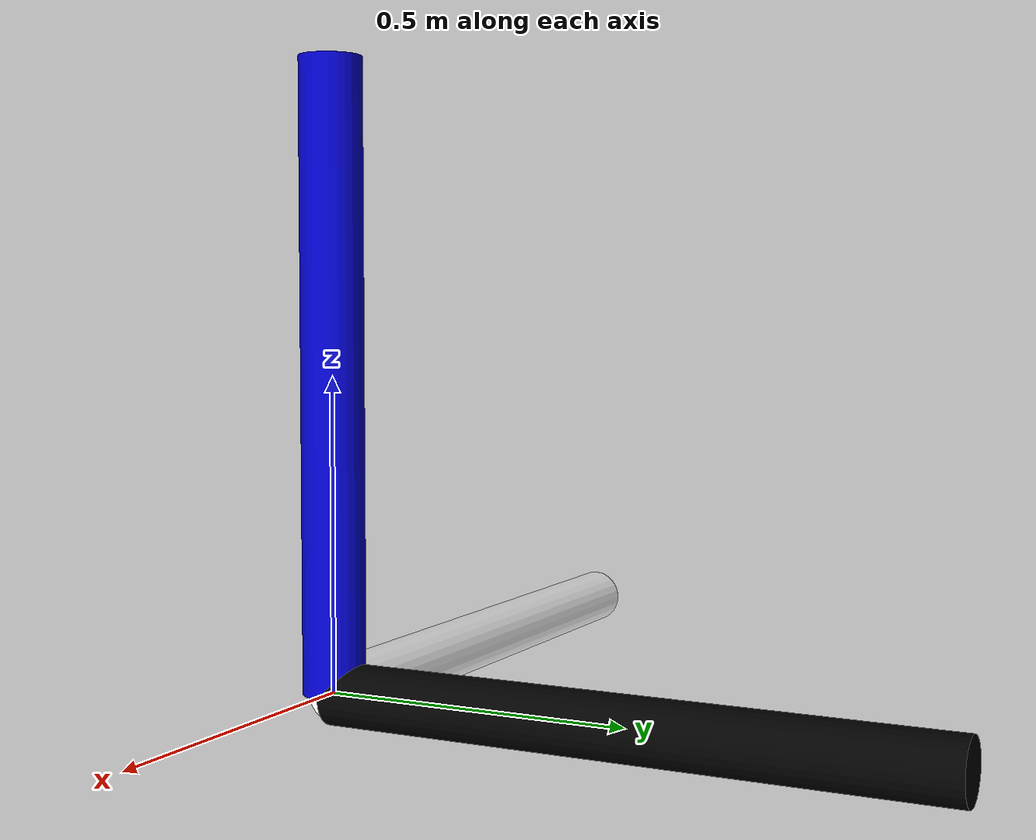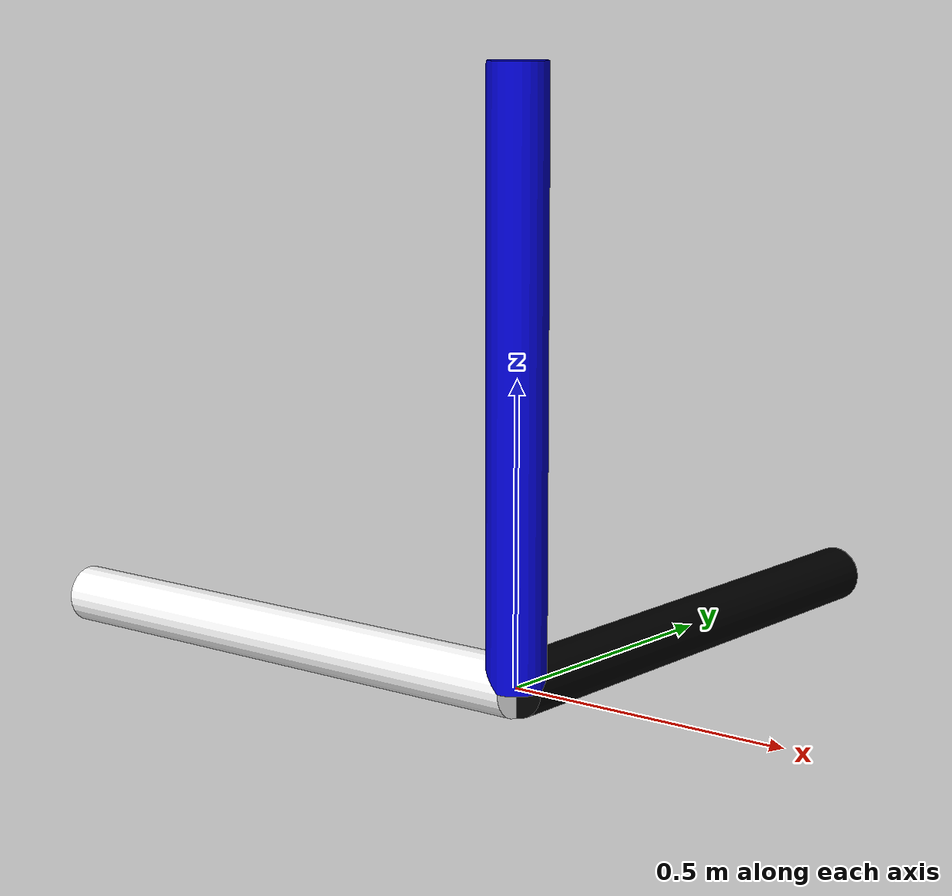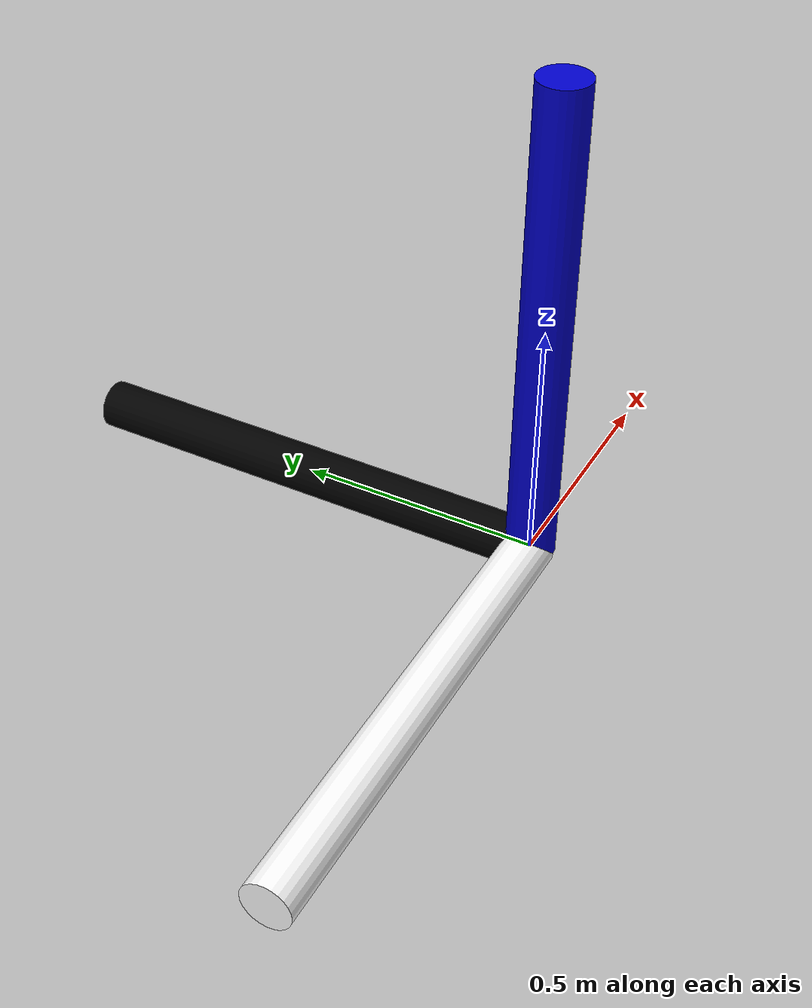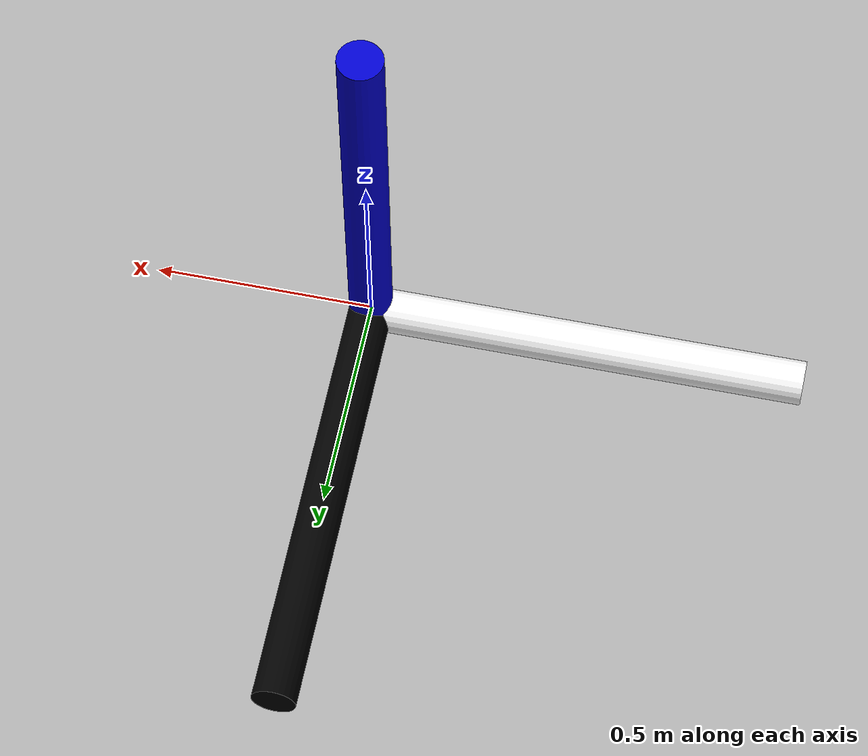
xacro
<?xml version="1.0"?>
<robot xmlns:xacro="http://ros.org/wiki/xacro" name="cartesian_cell" >

<xacro:include filename="$(find cartesian_description)/urdf/cartesian_robot.urdf.xacro" />

  <link name="world"/>

  <joint name="world2cartesian" type="fixed">
    <parent link="world"/>
    <child link="link_Z"/>
    <origin xyz="0 0 0.5"/>
  </joint>

</robot>

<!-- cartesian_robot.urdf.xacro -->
<robot xmlns:xacro="http://ros.org/wiki/xacro" name="cartesian_robot" >

  <material name="blue">
    <color rgba="0 0 0.8 1"/>
  </material>
  <material name="black">
    <color rgba="0 0 0 1"/>
  </material>
  <material name="white">
    <color rgba="1 1 1 1"/>
  </material>

  <link name="link_Z">
    <visual>
      <geometry>
        <cylinder length="1" radius="0.05"/>
      </geometry>
      <origin rpy="0 0 0" xyz="0 0 0"/>
      <material name="blue"/>
    </visual>
    <collision>
      <origin rpy="0 0 0" xyz="0 0 0"/>
      <geometry>
        <sphere radius="0.0"/>
      </geometry>
    </collision>
  </link>

  <link name="link_Y">
    <visual>
      <geometry>
        <cylinder length="1" radius="0.05"/>
      </geometry>
      <origin rpy="1.570795 0 0" xyz="0 0 0"/>
      <material name="black"/>
    </visual>
    <collision>
      <origin rpy="1.570795 0 0" xyz="0 0 0"/>
      <geometry>
        <sphere radius="0.0"/>
      </geometry>
    </collision>
  </link>

  <joint name="from_Z_to_Y" type="prismatic">
    <parent link="link_Z"/>
    <child link="link_Y"/>
    <axis xyz = "0 0 1" />
    <origin rpy="0 0 0" xyz="0 0.5 -0.5"/>
    <limit effort="1000.0" lower="0" upper="1" velocity="0.5"/>
  </joint>

  <link name="link_fake">
    <visual>
      <geometry>
        <sphere radius="0.00005"/>
      </geometry>
      <origin rpy="0 0 0" xyz="0 0 0"/>
      <material name="black"/>
    </visual>
    <collision>
      <origin rpy="0.0 0.0 0.0" xyz="0 0 0"/>
      <geometry>
        <sphere radius="0.0"/>
      </geometry>
    </collision>
  </link>

  <joint name="from_Y_to_fake" type="prismatic">
    <parent link="link_Y"/>
    <child link="link_fake"/>
    <axis xyz = "0 1 0" />
    <origin rpy="0 0 0" xyz="0 -0.5 0"/>
    <limit effort="1000.0" lower="0" upper="1" velocity="0.5"/>
  </joint>

  <link name="link_X">
    <visual>
      <geometry>
        <cylinder length="1" radius="0.05"/>
      </geometry>
      <origin rpy="0 -1.570795 0" xyz="0 0 0"/>
      <material name="white"/>
    </visual>
    <collision>
      <origin rpy="0 -1.570795 0" xyz="0 0 0"/>
      <geometry>
        <sphere radius="0.0"/>
      </geometry>
    </collision>
  </link>

  <joint name="from_fake_to_X" type="prismatic">
    <parent link="link_fake"/>
    <child link="link_X"/>
    <axis xyz = "1 0 0" />
    <origin rpy="0 0 0" xyz="-0.5 0 0"/>
    <limit effort="1000.0" lower="0" upper="1" velocity="0.5"/>
  </joint>

  <link name="end_effector">
    <visual>
      <geometry>
        <sphere radius="0.005"/>
      </geometry>
      <origin rpy="0 0 0" xyz="0 0 0"/>
      <material name="black"/>
    </visual>
    <collision>
      <origin rpy="0 0 0" xyz="0 0 0"/>
      <geometry>
        <sphere radius="0.005"/>
      </geometry>
    </collision>
  </link>

  <joint name="from_X_to_end" type="fixed">
    <parent link="link_X"/>
    <child link="end_effector"/>
    <origin rpy="0 0 0" xyz="0.5 0 0"/>
  </joint>

</robot>
